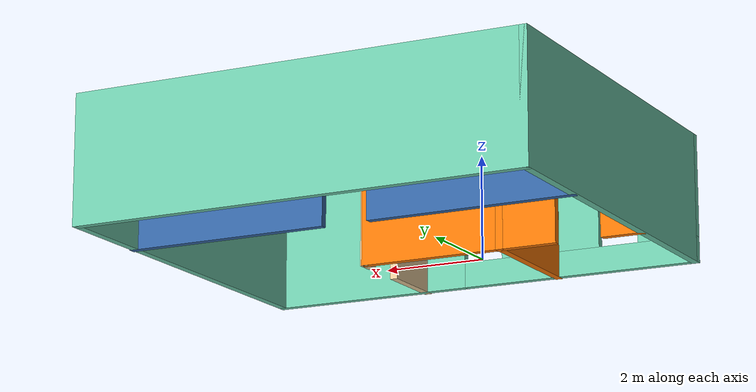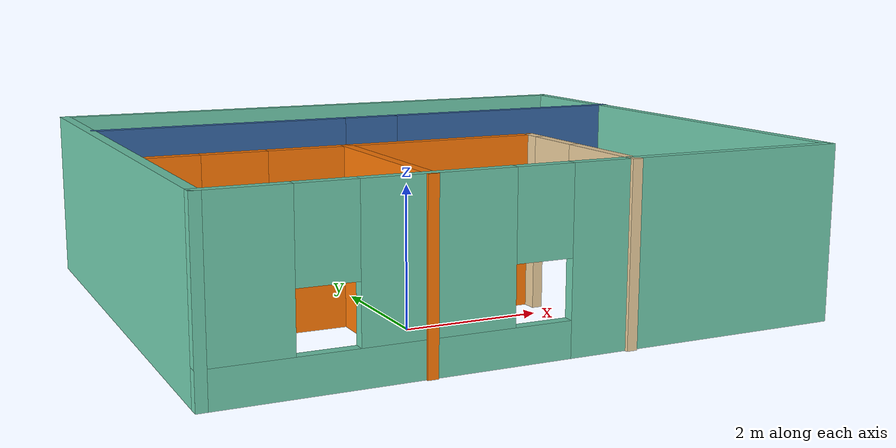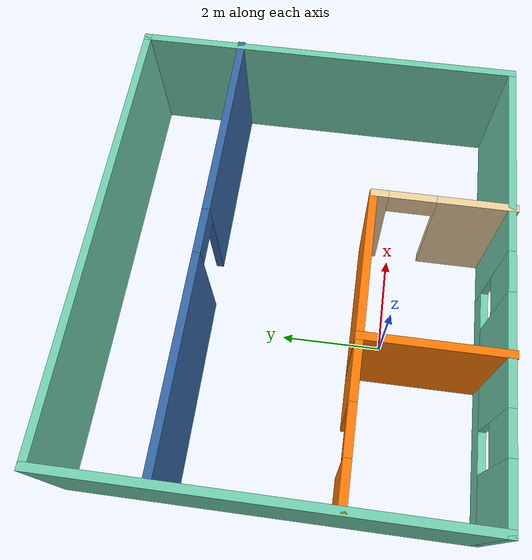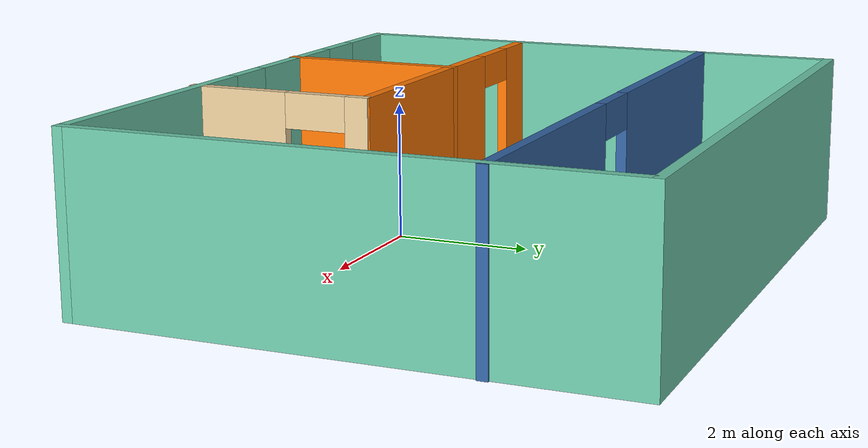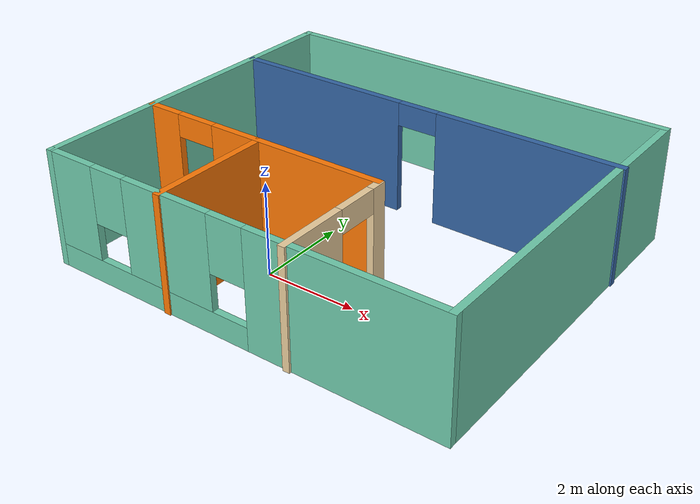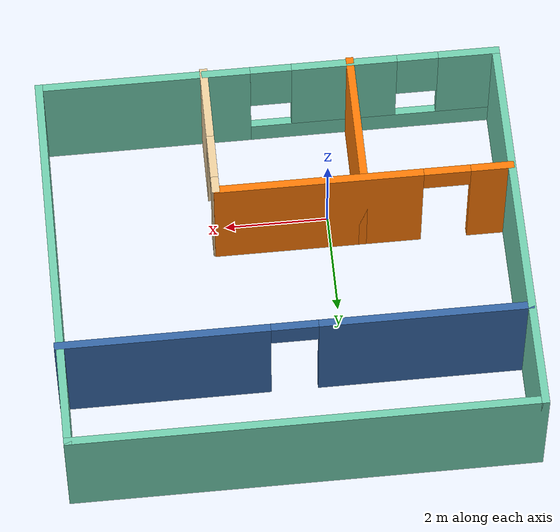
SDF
<?xml version='1.0'?>
<sdf version='1.6'>
  <model name='Building'>
    <pose frame=''>0.9817 1.75521 0 0 -0 0</pose>
    <link name='Wall_0'>
      <collision name='Wall_0_Collision'>
        <geometry>
          <box>
            <size>7.75 0.15 2.5</size>
          </box>
        </geometry>
        <pose frame=''>0 0 1.25 0 -0 0</pose>
      </collision>
      <visual name='Wall_0_Visual'>
        <pose frame=''>0 0 1.25 0 -0 0</pose>
        <geometry>
          <box>
            <size>7.75 0.15 2.5</size>
          </box>
        </geometry>
        <material>
          <script>
            <uri>file://media/materials/scripts/gazebo.material</uri>
            <name>Gazebo/Grey</name>
          </script>
          <ambient>0.435294 0.796078 0.67451 1</ambient>
        </material>
        <meta>
          <layer>0</layer>
        </meta>
      </visual>
      <pose frame=''>-4.4417 0.024788 0 0 -0 1.5708</pose>
    </link>
    <link name='Wall_1'>
      <collision name='Wall_1_Collision'>
        <geometry>
          <box>
            <size>9 0.15 2.5</size>
          </box>
        </geometry>
        <pose frame=''>0 0 1.25 0 -0 0</pose>
      </collision>
      <visual name='Wall_1_Visual'>
        <pose frame=''>0 0 1.25 0 -0 0</pose>
        <geometry>
          <box>
            <size>9 0.15 2.5</size>
          </box>
        </geometry>
        <material>
          <script>
            <uri>file://media/materials/scripts/gazebo.material</uri>
            <name>Gazebo/Grey</name>
          </script>
          <ambient>0.435294 0.796078 0.67451 1</ambient>
        </material>
        <meta>
          <layer>0</layer>
        </meta>
      </visual>
      <pose frame=''>-0.0167 3.82479 0 0 -0 0</pose>
    </link>
    <link name='Wall_11'>
      <pose frame=''>0.016701 1.83597 0 0 -0 0</pose>
      <visual name='Wall_11_Visual_0'>
        <pose frame=''>-2.47501 0 1.25 0 -0 0</pose>
        <geometry>
          <box>
            <size>4.04999 0.15 2.5</size>
          </box>
        </geometry>
        <material>
          <script>
            <uri>file://media/materials/scripts/gazebo.material</uri>
            <name>Gazebo/Grey</name>
          </script>
          <ambient>0.203922 0.396078 0.643137 1</ambient>
        </material>
        <meta>
          <layer>0</layer>
        </meta>
      </visual>
      <collision name='Wall_11_Collision_0'>
        <geometry>
          <box>
            <size>4.04999 0.15 2.5</size>
          </box>
        </geometry>
        <pose frame=''>-2.47501 0 1.25 0 -0 0</pose>
      </collision>
      <visual name='Wall_11_Visual_1'>
        <pose frame=''>2.47499 0 1.25 0 -0 0</pose>
        <geometry>
          <box>
            <size>4.05001 0.15 2.5</size>
          </box>
        </geometry>
        <material>
          <script>
            <uri>file://media/materials/scripts/gazebo.material</uri>
            <name>Gazebo/Grey</name>
          </script>
          <ambient>0.203922 0.396078 0.643137 1</ambient>
        </material>
        <meta>
          <layer>0</layer>
        </meta>
      </visual>
      <collision name='Wall_11_Collision_1'>
        <geometry>
          <box>
            <size>4.05001 0.15 2.5</size>
          </box>
        </geometry>
        <pose frame=''>2.47499 0 1.25 0 -0 0</pose>
      </collision>
      <visual name='Wall_11_Visual_2'>
        <pose frame=''>-1.4e-05 0 2.25 0 -0 0</pose>
        <geometry>
          <box>
            <size>0.9 0.15 0.5</size>
          </box>
        </geometry>
        <material>
          <script>
            <uri>file://media/materials/scripts/gazebo.material</uri>
            <name>Gazebo/Grey</name>
          </script>
          <ambient>0.203922 0.396078 0.643137 1</ambient>
        </material>
        <meta>
          <layer>0</layer>
        </meta>
      </visual>
      <collision name='Wall_11_Collision_2'>
        <geometry>
          <box>
            <size>0.9 0.15 0.5</size>
          </box>
        </geometry>
        <pose frame=''>-1.4e-05 0 2.25 0 -0 0</pose>
      </collision>
    </link>
    <link name='Wall_2'>
      <collision name='Wall_2_Collision'>
        <geometry>
          <box>
            <size>7.75 0.15 2.5</size>
          </box>
        </geometry>
        <pose frame=''>0 0 1.25 0 -0 0</pose>
      </collision>
      <visual name='Wall_2_Visual'>
        <pose frame=''>0 0 1.25 0 -0 0</pose>
        <geometry>
          <box>
            <size>7.75 0.15 2.5</size>
          </box>
        </geometry>
        <material>
          <script>
            <uri>file://media/materials/scripts/gazebo.material</uri>
            <name>Gazebo/Grey</name>
          </script>
          <ambient>0.435294 0.796078 0.67451 1</ambient>
        </material>
        <meta>
          <layer>0</layer>
        </meta>
      </visual>
      <pose frame=''>4.4083 0.024788 0 0 -0 -1.5708</pose>
    </link>
    <link name='Wall_3'>
      <pose frame=''>-0.0167 -3.77521 0 0 -0 3.14159</pose>
      <visual name='Wall_3_Visual_0'>
        <pose frame=''>-2.42297 0 1.25 0 -0 0</pose>
        <geometry>
          <box>
            <size>4.15406 0.15 2.5</size>
          </box>
        </geometry>
        <material>
          <script>
            <uri>file://media/materials/scripts/gazebo.material</uri>
            <name>Gazebo/Grey</name>
          </script>
          <ambient>0.435294 0.796078 0.67451 1</ambient>
        </material>
        <meta>
          <layer>0</layer>
        </meta>
      </visual>
      <collision name='Wall_3_Collision_0'>
        <geometry>
          <box>
            <size>4.15406 0.15 2.5</size>
          </box>
        </geometry>
        <pose frame=''>-2.42297 0 1.25 0 -0 0</pose>
      </collision>
      <visual name='Wall_3_Visual_1'>
        <pose frame=''>2.07703 0 0.25 0 -0 0</pose>
        <geometry>
          <box>
            <size>4.84594 0.15 0.5</size>
          </box>
        </geometry>
        <material>
          <script>
            <uri>file://media/materials/scripts/gazebo.material</uri>
            <name>Gazebo/Grey</name>
          </script>
          <ambient>0.435294 0.796078 0.67451 1</ambient>
        </material>
        <meta>
          <layer>0</layer>
        </meta>
      </visual>
      <collision name='Wall_3_Collision_1'>
        <geometry>
          <box>
            <size>4.84594 0.15 0.5</size>
          </box>
        </geometry>
        <pose frame=''>2.07703 0 0.25 0 -0 0</pose>
      </collision>
      <visual name='Wall_3_Visual_2'>
        <pose frame=''>1.4795 0 1.5 0 -0 0</pose>
        <geometry>
          <box>
            <size>2.05088 0.15 2</size>
          </box>
        </geometry>
        <material>
          <script>
            <uri>file://media/materials/scripts/gazebo.material</uri>
            <name>Gazebo/Grey</name>
          </script>
          <ambient>0.435294 0.796078 0.67451 1</ambient>
        </material>
        <meta>
          <layer>0</layer>
        </meta>
      </visual>
      <collision name='Wall_3_Collision_2'>
        <geometry>
          <box>
            <size>2.05088 0.15 2</size>
          </box>
        </geometry>
        <pose frame=''>1.4795 0 1.5 0 -0 0</pose>
      </collision>
      <visual name='Wall_3_Visual_3'>
        <pose frame=''>3.90247 0 1.5 0 -0 0</pose>
        <geometry>
          <box>
            <size>1.19506 0.15 2</size>
          </box>
        </geometry>
        <material>
          <script>
            <uri>file://media/materials/scripts/gazebo.material</uri>
            <name>Gazebo/Grey</name>
          </script>
          <ambient>0.435294 0.796078 0.67451 1</ambient>
        </material>
        <meta>
          <layer>0</layer>
        </meta>
      </visual>
      <collision name='Wall_3_Collision_3'>
        <geometry>
          <box>
            <size>1.19506 0.15 2</size>
          </box>
        </geometry>
        <pose frame=''>3.90247 0 1.5 0 -0 0</pose>
      </collision>
      <visual name='Wall_3_Visual_4'>
        <pose frame=''>0.054064 0 1.9 0 -0 0</pose>
        <geometry>
          <box>
            <size>0.8 0.15 1.2</size>
          </box>
        </geometry>
        <material>
          <script>
            <uri>file://media/materials/scripts/gazebo.material</uri>
            <name>Gazebo/Grey</name>
          </script>
          <ambient>0.435294 0.796078 0.67451 1</ambient>
        </material>
        <meta>
          <layer>0</layer>
        </meta>
      </visual>
      <collision name='Wall_3_Collision_4'>
        <geometry>
          <box>
            <size>0.8 0.15 1.2</size>
          </box>
        </geometry>
        <pose frame=''>0.054064 0 1.9 0 -0 0</pose>
      </collision>
      <visual name='Wall_3_Visual_5'>
        <pose frame=''>2.90494 0 1.9 0 -0 0</pose>
        <geometry>
          <box>
            <size>0.8 0.15 1.2</size>
          </box>
        </geometry>
        <material>
          <script>
            <uri>file://media/materials/scripts/gazebo.material</uri>
            <name>Gazebo/Grey</name>
          </script>
          <ambient>0.435294 0.796078 0.67451 1</ambient>
        </material>
        <meta>
          <layer>0</layer>
        </meta>
      </visual>
      <collision name='Wall_3_Collision_5'>
        <geometry>
          <box>
            <size>0.8 0.15 1.2</size>
          </box>
        </geometry>
        <pose frame=''>2.90494 0 1.9 0 -0 0</pose>
      </collision>
    </link>
    <link name='Wall_5'>
      <pose frame=''>-1.6083 -1.2073 0 0 -0 0</pose>
      <visual name='Wall_5_Visual_0'>
        <pose frame=''>-2.45909 0 1.25 0 -0 0</pose>
        <geometry>
          <box>
            <size>0.831814 0.15 2.5</size>
          </box>
        </geometry>
        <material>
          <script>
            <uri>file://media/materials/scripts/gazebo.material</uri>
            <name>Gazebo/Grey</name>
          </script>
          <ambient>0.996078 0.47451 0.0196078 1</ambient>
        </material>
        <meta>
          <layer>0</layer>
        </meta>
      </visual>
      <collision name='Wall_5_Collision_0'>
        <geometry>
          <box>
            <size>0.831814 0.15 2.5</size>
          </box>
        </geometry>
        <pose frame=''>-2.45909 0 1.25 0 -0 0</pose>
      </collision>
      <visual name='Wall_5_Visual_1'>
        <pose frame=''>0.865907 0 1.25 0 -0 0</pose>
        <geometry>
          <box>
            <size>4.01819 0.15 2.5</size>
          </box>
        </geometry>
        <material>
          <script>
            <uri>file://media/materials/scripts/gazebo.material</uri>
            <name>Gazebo/Grey</name>
          </script>
          <ambient>0.996078 0.47451 0.0196078 1</ambient>
        </material>
        <meta>
          <layer>0</layer>
        </meta>
      </visual>
      <collision name='Wall_5_Collision_1'>
        <geometry>
          <box>
            <size>4.01819 0.15 2.5</size>
          </box>
        </geometry>
        <pose frame=''>0.865907 0 1.25 0 -0 0</pose>
      </collision>
      <visual name='Wall_5_Visual_2'>
        <pose frame=''>-1.59319 0 2.25 0 -0 0</pose>
        <geometry>
          <box>
            <size>0.9 0.15 0.5</size>
          </box>
        </geometry>
        <material>
          <script>
            <uri>file://media/materials/scripts/gazebo.material</uri>
            <name>Gazebo/Grey</name>
          </script>
          <ambient>0.996078 0.47451 0.0196078 1</ambient>
        </material>
        <meta>
          <layer>0</layer>
        </meta>
      </visual>
      <collision name='Wall_5_Collision_2'>
        <geometry>
          <box>
            <size>0.9 0.15 0.5</size>
          </box>
        </geometry>
        <pose frame=''>-1.59319 0 2.25 0 -0 0</pose>
      </collision>
    </link>
    <link name='Wall_7'>
      <collision name='Wall_7_Collision'>
        <geometry>
          <box>
            <size>2.75 0.15 2.5</size>
          </box>
        </geometry>
        <pose frame=''>0 0 1.25 0 -0 0</pose>
      </collision>
      <visual name='Wall_7_Visual'>
        <pose frame=''>0 0 1.25 0 -0 0</pose>
        <geometry>
          <box>
            <size>2.75 0.15 2.5</size>
          </box>
        </geometry>
        <material>
          <script>
            <uri>file://media/materials/scripts/gazebo.material</uri>
            <name>Gazebo/Grey</name>
          </script>
          <ambient>0.996078 0.47451 0.0196078 1</ambient>
        </material>
        <meta>
          <layer>0</layer>
        </meta>
      </visual>
      <pose frame=''>-1.60989 -2.5073 0 0 -0 -1.5708</pose>
    </link>
    <link name='Wall_9'>
      <pose frame=''>1.2235 -2.52479 0 0 -0 -1.5708</pose>
      <visual name='Wall_9_Visual_0'>
        <pose frame=''>-1.20395 0 1.25 0 -0 0</pose>
        <geometry>
          <box>
            <size>0.342093 0.15 2.5</size>
          </box>
        </geometry>
        <material>
          <script>
            <uri>file://media/materials/scripts/gazebo.material</uri>
            <name>Gazebo/Grey</name>
          </script>
          <ambient>0.921569 0.807843 0.615686 1</ambient>
        </material>
        <meta>
          <layer>0</layer>
        </meta>
      </visual>
      <collision name='Wall_9_Collision_0'>
        <geometry>
          <box>
            <size>0.342093 0.15 2.5</size>
          </box>
        </geometry>
        <pose frame=''>-1.20395 0 1.25 0 -0 0</pose>
      </collision>
      <visual name='Wall_9_Visual_1'>
        <pose frame=''>0.621046 0 1.25 0 -0 0</pose>
        <geometry>
          <box>
            <size>1.50791 0.15 2.5</size>
          </box>
        </geometry>
        <material>
          <script>
            <uri>file://media/materials/scripts/gazebo.material</uri>
            <name>Gazebo/Grey</name>
          </script>
          <ambient>0.921569 0.807843 0.615686 1</ambient>
        </material>
        <meta>
          <layer>0</layer>
        </meta>
      </visual>
      <collision name='Wall_9_Collision_1'>
        <geometry>
          <box>
            <size>1.50791 0.15 2.5</size>
          </box>
        </geometry>
        <pose frame=''>0.621046 0 1.25 0 -0 0</pose>
      </collision>
      <visual name='Wall_9_Visual_2'>
        <pose frame=''>-0.582907 0 2.25 0 -0 0</pose>
        <geometry>
          <box>
            <size>0.9 0.15 0.5</size>
          </box>
        </geometry>
        <material>
          <script>
            <uri>file://media/materials/scripts/gazebo.material</uri>
            <name>Gazebo/Grey</name>
          </script>
          <ambient>0.921569 0.807843 0.615686 1</ambient>
        </material>
        <meta>
          <layer>0</layer>
        </meta>
      </visual>
      <collision name='Wall_9_Collision_2'>
        <geometry>
          <box>
            <size>0.9 0.15 0.5</size>
          </box>
        </geometry>
        <pose frame=''>-0.582907 0 2.25 0 -0 0</pose>
      </collision>
    </link>
    <static>1</static>
  </model>
</sdf>
